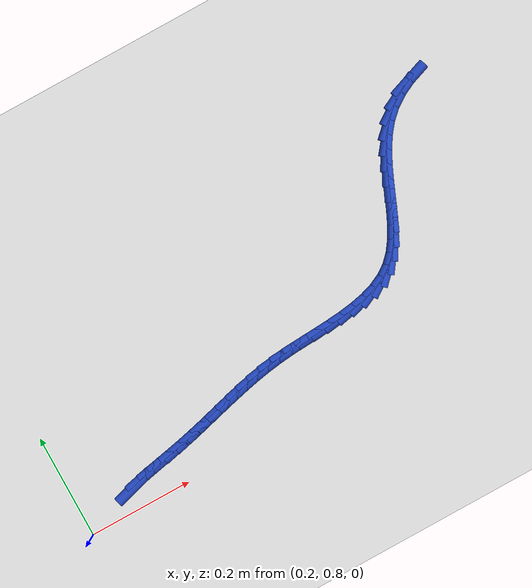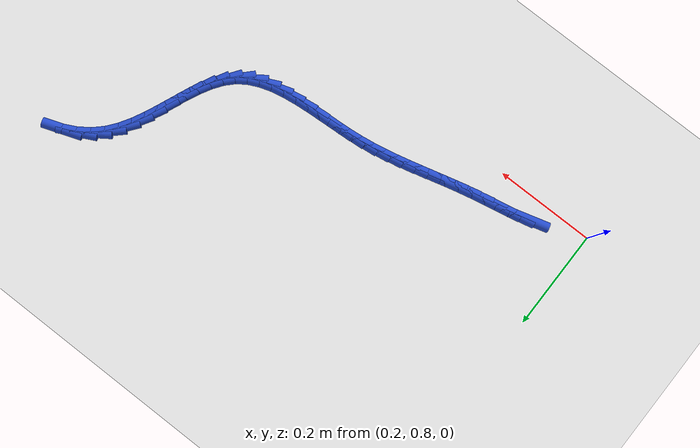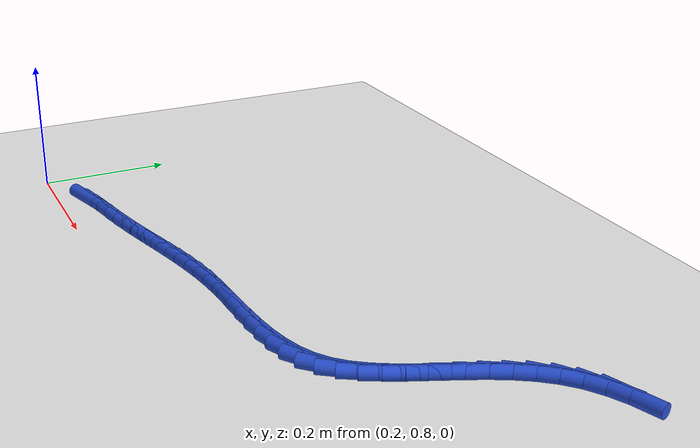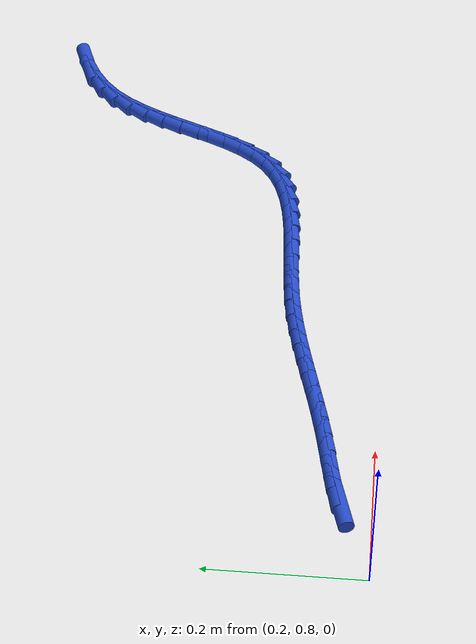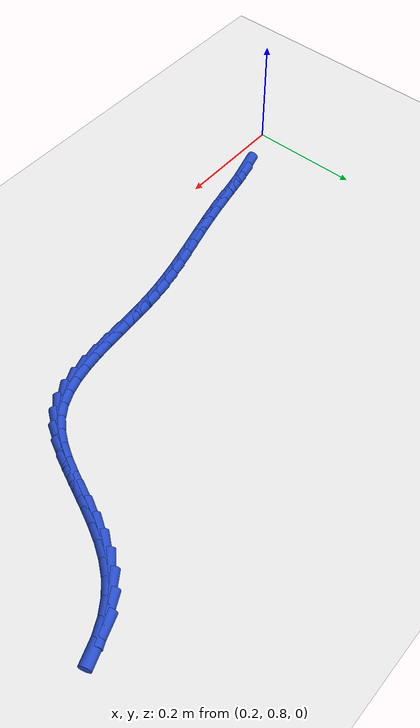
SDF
<sdf version="1.6">
 <world name="default">
  <model name="ground_plane">
   <static>1</static>
   <link name="link">
    <collision name="collision">
     <geometry><plane><normal>0 0 1</normal><size>100 100</size></plane></geometry>
     <surface><friction><ode><mu>100</mu><mu2>50</mu2></ode></friction></surface>
    </collision>
    <visual name="visual">
     <cast_shadows>0</cast_shadows>
     <geometry><plane><normal>0 0 1</normal><size>100 100</size></plane></geometry>
     <material>
      <script><uri>file://media/materials/scripts/gazebo.material</uri><name>Gazebo/WhiteGlow</name></script>
     </material>
    </visual>
   </link>
  </model>
  <model name="line">
   <link name="link_37">
    <pose>0.3079399075796144 0.8411389296652115 0.01 0 1.57 0.27450635002502277</pose>
    <collision name="collision">
     <geometry><cylinder><radius>0.01</radius><length>0.08</length></cylinder></geometry>
    </collision>
    <visual name="visual">
     <material>
      <script><name>Gazebo/Blue</name><uri>file://media/materials/scripts/gazebo.material</uri></script>
     </material>
     <geometry><cylinder><radius>0.01</radius><length>0.08</length></cylinder></geometry>
    </visual>
   </link>
   <link name="link_38">
    <pose>0.33447456900766415 0.8486115080111091 0.01 0 1.57 0.2157952483238712</pose>
    <collision name="collision">
     <geometry><cylinder><radius>0.01</radius><length>0.08</length></cylinder></geometry>
    </collision>
    <visual name="visual">
     <material>
      <script><name>Gazebo/Blue</name><uri>file://media/materials/scripts/gazebo.material</uri></script>
     </material>
     <geometry><cylinder><radius>0.01</radius><length>0.08</length></cylinder></geometry>
    </visual>
   </link>
   <link name="link_39">
    <pose>0.36275498001162254 0.8548108153330591 0.01 0 1.57 0.19287402628280426</pose>
    <collision name="collision">
     <geometry><cylinder><radius>0.01</radius><length>0.08</length></cylinder></geometry>
    </collision>
    <visual name="visual">
     <material>
      <script><name>Gazebo/Blue</name><uri>file://media/materials/scripts/gazebo.material</uri></script>
     </material>
     <geometry><cylinder><radius>0.01</radius><length>0.08</length></cylinder></geometry>
    </visual>
   </link>
   <link name="link_40">
    <pose>0.39159450397847717 0.8604432268998085 0.01 0 1.57 0.20118924336315208</pose>
    <collision name="collision">
     <geometry><cylinder><radius>0.01</radius><length>0.08</length></cylinder></geometry>
    </collision>
    <visual name="visual">
     <material>
      <script><name>Gazebo/Blue</name><uri>file://media/materials/scripts/gazebo.material</uri></script>
     </material>
     <geometry><cylinder><radius>0.01</radius><length>0.08</length></cylinder></geometry>
    </visual>
   </link>
   <link name="link_41">
    <pose>0.4198286737873333 0.8662015419458791 0.01 0 1.57 0.22434620311010006</pose>
    <collision name="collision">
     <geometry><cylinder><radius>0.01</radius><length>0.08</length></cylinder></geometry>
    </collision>
    <visual name="visual">
     <material>
      <script><name>Gazebo/Blue</name><uri>file://media/materials/scripts/gazebo.material</uri></script>
     </material>
     <geometry><cylinder><radius>0.01</radius><length>0.08</length></cylinder></geometry>
    </visual>
   </link>
   <link name="link_42">
    <pose>0.44693329170229457 0.8723864749869115 0.01 0 1.57 0.24233790065833596</pose>
    <collision name="collision">
     <geometry><cylinder><radius>0.01</radius><length>0.08</length></cylinder></geometry>
    </collision>
    <visual name="visual">
     <material>
      <script><name>Gazebo/Blue</name><uri>file://media/materials/scripts/gazebo.material</uri></script>
     </material>
     <geometry><cylinder><radius>0.01</radius><length>0.08</length></cylinder></geometry>
    </visual>
   </link>
   <link name="link_43">
    <pose>0.47310651112427277 0.8788563910384096 0.01 0 1.57 0.2530862116136959</pose>
    <collision name="collision">
     <geometry><cylinder><radius>0.01</radius><length>0.08</length></cylinder></geometry>
    </collision>
    <visual name="visual">
     <material>
      <script><name>Gazebo/Blue</name><uri>file://media/materials/scripts/gazebo.material</uri></script>
     </material>
     <geometry><cylinder><radius>0.01</radius><length>0.08</length></cylinder></geometry>
    </visual>
   </link>
   <link name="link_44">
    <pose>0.4985851462086352 0.8854459802512066 0.01 0 1.57 0.2558098369335754</pose>
    <collision name="collision">
     <geometry><cylinder><radius>0.01</radius><length>0.08</length></cylinder></geometry>
    </collision>
    <visual name="visual">
     <material>
      <script><name>Gazebo/Blue</name><uri>file://media/materials/scripts/gazebo.material</uri></script>
     </material>
     <geometry><cylinder><radius>0.01</radius><length>0.08</length></cylinder></geometry>
    </visual>
   </link>
   <link name="link_45">
    <pose>0.523606011110749 0.8919899327761356 0.01 0 1.57 0.25002080515490976</pose>
    <collision name="collision">
     <geometry><cylinder><radius>0.01</radius><length>0.08</length></cylinder></geometry>
    </collision>
    <visual name="visual">
     <material>
      <script><name>Gazebo/Blue</name><uri>file://media/materials/scripts/gazebo.material</uri></script>
     </material>
     <geometry><cylinder><radius>0.01</radius><length>0.08</length></cylinder></geometry>
    </visual>
   </link>
   <link name="link_46">
    <pose>0.5484059199859805 0.8983229387640296 0.01 0 1.57 0.23558176893066318</pose>
    <collision name="collision">
     <geometry><cylinder><radius>0.01</radius><length>0.08</length></cylinder></geometry>
    </collision>
    <visual name="visual">
     <material>
      <script><name>Gazebo/Blue</name><uri>file://media/materials/scripts/gazebo.material</uri></script>
     </material>
     <geometry><cylinder><radius>0.01</radius><length>0.08</length></cylinder></geometry>
    </visual>
   </link>
   <link name="link_47">
    <pose>0.5732216869896974 0.9042796883657219 0.01 0 1.57 0.21274704398890315</pose>
    <collision name="collision">
     <geometry><cylinder><radius>0.01</radius><length>0.08</length></cylinder></geometry>
    </collision>
    <visual name="visual">
     <material>
      <script><name>Gazebo/Blue</name><uri>file://media/materials/scripts/gazebo.material</uri></script>
     </material>
     <geometry><cylinder><radius>0.01</radius><length>0.08</length></cylinder></geometry>
    </visual>
   </link>
   <link name="link_48">
    <pose>0.5982901262772666 0.909694871732046 0.01 0 1.57 0.18217846485780043</pose>
    <collision name="collision">
     <geometry><cylinder><radius>0.01</radius><length>0.08</length></cylinder></geometry>
    </collision>
    <visual name="visual">
     <material>
      <script><name>Gazebo/Blue</name><uri>file://media/materials/scripts/gazebo.material</uri></script>
     </material>
     <geometry><cylinder><radius>0.01</radius><length>0.08</length></cylinder></geometry>
    </visual>
   </link>
   <link name="link_49">
    <pose>0.623848052004055 0.9144031790138349 0.01 0 1.57 0.14492444308787372</pose>
    <collision name="collision">
     <geometry><cylinder><radius>0.01</radius><length>0.08</length></cylinder></geometry>
    </collision>
    <visual name="visual">
     <material>
      <script><name>Gazebo/Blue</name><uri>file://media/materials/scripts/gazebo.material</uri></script>
     </material>
     <geometry><cylinder><radius>0.01</radius><length>0.08</length></cylinder></geometry>
    </visual>
   </link>
   <link name="link_50">
    <pose>0.6501322783254295 0.9182393003619215 0.01 0 1.57 0.10310828392380683</pose>
    <collision name="collision">
     <geometry><cylinder><radius>0.01</radius><length>0.08</length></cylinder></geometry>
    </collision>
    <visual name="visual">
     <material>
      <script><name>Gazebo/Blue</name><uri>file://media/materials/scripts/gazebo.material</uri></script>
     </material>
     <geometry><cylinder><radius>0.01</radius><length>0.08</length></cylinder></geometry>
    </visual>
   </link>
   <link name="link_51">
    <pose>0.677360974737244 0.921056796171042 0.01 0 1.57 0.07105435621257762</pose>
    <collision name="collision">
     <geometry><cylinder><radius>0.01</radius><length>0.08</length></cylinder></geometry>
    </collision>
    <visual name="visual">
     <material>
      <script><name>Gazebo/Blue</name><uri>file://media/materials/scripts/gazebo.material</uri></script>
     </material>
     <geometry><cylinder><radius>0.01</radius><length>0.08</length></cylinder></geometry>
    </visual>
   </link>
   <link name="link_52">
    <pose>0.7054123233320791 0.9230533277951959 0.01 0 1.57 0.05875239474969498</pose>
    <collision name="collision">
     <geometry><cylinder><radius>0.01</radius><length>0.08</length></cylinder></geometry>
    </collision>
    <visual name="visual">
     <material>
      <script><name>Gazebo/Blue</name><uri>file://media/materials/scripts/gazebo.material</uri></script>
     </material>
     <geometry><cylinder><radius>0.01</radius><length>0.08</length></cylinder></geometry>
    </visual>
   </link>
   <link name="link_53">
    <pose>0.733867586351295 0.9247270689151497 0.01 0 1.57 0.06530260756865779</pose>
    <collision name="collision">
     <geometry><cylinder><radius>0.01</radius><length>0.08</length></cylinder></geometry>
    </collision>
    <visual name="visual">
     <material>
      <script><name>Gazebo/Blue</name><uri>file://media/materials/scripts/gazebo.material</uri></script>
     </material>
     <geometry><cylinder><radius>0.01</radius><length>0.08</length></cylinder></geometry>
    </visual>
   </link>
   <link name="link_54">
    <pose>0.7622980444536112 0.926586295562899 0.01 0 1.57 0.09100128806174924</pose>
    <collision name="collision">
     <geometry><cylinder><radius>0.01</radius><length>0.08</length></cylinder></geometry>
    </collision>
    <visual name="visual">
     <material>
      <script><name>Gazebo/Blue</name><uri>file://media/materials/scripts/gazebo.material</uri></script>
     </material>
     <geometry><cylinder><radius>0.01</radius><length>0.08</length></cylinder></geometry>
    </visual>
   </link>
   <link name="link_55">
    <pose>0.790274978297749 0.9291392837704403 0.01 0 1.57 0.13771178994860755</pose>
    <collision name="collision">
     <geometry><cylinder><radius>0.01</radius><length>0.08</length></cylinder></geometry>
    </collision>
    <visual name="visual">
     <material>
      <script><name>Gazebo/Blue</name><uri>file://media/materials/scripts/gazebo.material</uri></script>
     </material>
     <geometry><cylinder><radius>0.01</radius><length>0.08</length></cylinder></geometry>
    </visual>
   </link>
   <link name="link_56">
    <pose>0.8173696685424287 0.9328943095697688 0.01 0 1.57 0.20887685441671777</pose>
    <collision name="collision">
     <geometry><cylinder><radius>0.01</radius><length>0.08</length></cylinder></geometry>
    </collision>
    <visual name="visual">
     <material>
      <script><name>Gazebo/Blue</name><uri>file://media/materials/scripts/gazebo.material</uri></script>
     </material>
     <geometry><cylinder><radius>0.01</radius><length>0.08</length></cylinder></geometry>
    </visual>
   </link>
   <link name="link_57">
    <pose>0.8431533958463701 0.9383596489928803 0.01 0 1.57 0.30931938928117136</pose>
    <collision name="collision">
     <geometry><cylinder><radius>0.01</radius><length>0.08</length></cylinder></geometry>
    </collision>
    <visual name="visual">
     <material>
      <script><name>Gazebo/Blue</name><uri>file://media/materials/scripts/gazebo.material</uri></script>
     </material>
     <geometry><cylinder><radius>0.01</radius><length>0.08</length></cylinder></geometry>
    </visual>
   </link>
   <link name="link_58">
    <pose>0.867197440868294 0.9460435780717705 0.01 0 1.57 0.4441889619875084</pose>
    <collision name="collision">
     <geometry><cylinder><radius>0.01</radius><length>0.08</length></cylinder></geometry>
    </collision>
    <visual name="visual">
     <material>
      <script><name>Gazebo/Blue</name><uri>file://media/materials/scripts/gazebo.material</uri></script>
     </material>
     <geometry><cylinder><radius>0.01</radius><length>0.08</length></cylinder></geometry>
    </visual>
   </link>
   <link name="link_59">
    <pose>0.8890730842669203 0.9564543728384354 0.01 0 1.57 0.6159463296051844</pose>
    <collision name="collision">
     <geometry><cylinder><radius>0.01</radius><length>0.08</length></cylinder></geometry>
    </collision>
    <visual name="visual">
     <material>
      <script><name>Gazebo/Blue</name><uri>file://media/materials/scripts/gazebo.material</uri></script>
     </material>
     <geometry><cylinder><radius>0.01</radius><length>0.08</length></cylinder></geometry>
    </visual>
   </link>
   <link name="link_60">
    <pose>0.9083518604116103 0.9701000244588895 0.01 0 1.57 0.8044559085383504</pose>
    <collision name="collision">
     <geometry><cylinder><radius>0.01</radius><length>0.08</length></cylinder></geometry>
    </collision>
    <visual name="visual">
     <material>
      <script><name>Gazebo/Blue</name><uri>file://media/materials/scripts/gazebo.material</uri></script>
     </material>
     <geometry><cylinder><radius>0.01</radius><length>0.08</length></cylinder></geometry>
    </visual>
   </link>
   <link name="link_61">
    <pose>0.9248381963469678 0.9872270325025454 0.01 0 1.57 0.9572533420258721</pose>
    <collision name="collision">
     <geometry><cylinder><radius>0.01</radius><length>0.08</length></cylinder></geometry>
    </collision>
    <visual name="visual">
     <material>
      <script><name>Gazebo/Blue</name><uri>file://media/materials/scripts/gazebo.material</uri></script>
     </material>
     <geometry><cylinder><radius>0.01</radius><length>0.08</length></cylinder></geometry>
    </visual>
   </link>
   <link name="link_62">
    <pose>0.9389998368593798 1.0073371242304006 0.01 0 1.57 1.0656575729727458</pose>
    <collision name="collision">
     <geometry><cylinder><radius>0.01</radius><length>0.08</length></cylinder></geometry>
    </collision>
    <visual name="visual">
     <material>
      <script><name>Gazebo/Blue</name><uri>file://media/materials/scripts/gazebo.material</uri></script>
     </material>
     <geometry><cylinder><radius>0.01</radius><length>0.08</length></cylinder></geometry>
    </visual>
   </link>
   <link name="link_63">
    <pose>0.9514218378261524 1.0298003101612632 0.01 0 1.57 1.1348320544643955</pose>
    <collision name="collision">
     <geometry><cylinder><radius>0.01</radius><length>0.08</length></cylinder></geometry>
    </collision>
    <visual name="visual">
     <material>
      <script><name>Gazebo/Blue</name><uri>file://media/materials/scripts/gazebo.material</uri></script>
     </material>
     <geometry><cylinder><radius>0.01</radius><length>0.08</length></cylinder></geometry>
    </visual>
   </link>
   <link name="link_64">
    <pose>0.9626892551245904 1.0539866008139387 0.01 0 1.57 1.1704631951919957</pose>
    <collision name="collision">
     <geometry><cylinder><radius>0.01</radius><length>0.08</length></cylinder></geometry>
    </collision>
    <visual name="visual">
     <material>
      <script><name>Gazebo/Blue</name><uri>file://media/materials/scripts/gazebo.material</uri></script>
     </material>
     <geometry><cylinder><radius>0.01</radius><length>0.08</length></cylinder></geometry>
    </visual>
   </link>
   <link name="link_65">
    <pose>0.9733871446319992 1.0792660067072357 0.01 0 1.57 1.1764235700115273</pose>
    <collision name="collision">
     <geometry><cylinder><radius>0.01</radius><length>0.08</length></cylinder></geometry>
    </collision>
    <visual name="visual">
     <material>
      <script><name>Gazebo/Blue</name><uri>file://media/materials/scripts/gazebo.material</uri></script>
     </material>
     <geometry><cylinder><radius>0.01</radius><length>0.08</length></cylinder></geometry>
    </visual>
   </link>
   <link name="link_66">
    <pose>0.984100562225684 1.10500853835996 0.01 0 1.57 1.154302546132972</pose>
    <collision name="collision">
     <geometry><cylinder><radius>0.01</radius><length>0.08</length></cylinder></geometry>
    </collision>
    <visual name="visual">
     <material>
      <script><name>Gazebo/Blue</name><uri>file://media/materials/scripts/gazebo.material</uri></script>
     </material>
     <geometry><cylinder><radius>0.01</radius><length>0.08</length></cylinder></geometry>
    </visual>
   </link>
   <link name="link_67">
    <pose>0.9954145637829506 1.1305842062909193 0.01 0 1.57 1.103596077825522</pose>
    <collision name="collision">
     <geometry><cylinder><radius>0.01</radius><length>0.08</length></cylinder></geometry>
    </collision>
    <visual name="visual">
     <material>
      <script><name>Gazebo/Blue</name><uri>file://media/materials/scripts/gazebo.material</uri></script>
     </material>
     <geometry><cylinder><radius>0.01</radius><length>0.08</length></cylinder></geometry>
    </visual>
   </link>
   <link name="link_68">
    <pose>1.0079142051811034 1.1553630210189199 0.01 0 1.57 1.0222566667633124</pose>
    <collision name="collision">
     <geometry><cylinder><radius>0.01</radius><length>0.08</length></cylinder></geometry>
    </collision>
    <visual name="visual">
     <material>
      <script><name>Gazebo/Blue</name><uri>file://media/materials/scripts/gazebo.material</uri></script>
     </material>
     <geometry><cylinder><radius>0.01</radius><length>0.08</length></cylinder></geometry>
    </visual>
   </link>
   <link name="link_69">
    <pose>1.0221845422974485 1.1787149930627696 0.01 0 1.57 0.9079065773738728</pose>
    <collision name="collision">
     <geometry><cylinder><radius>0.01</radius><length>0.08</length></cylinder></geometry>
    </collision>
    <visual name="visual">
     <material>
      <script><name>Gazebo/Blue</name><uri>file://media/materials/scripts/gazebo.material</uri></script>
     </material>
     <geometry><cylinder><radius>0.01</radius><length>0.08</length></cylinder></geometry>
    </visual>
   </link>
   <link name="link_70">
    <pose>1.0388106310092906 1.2000101329412747 0.01 0 1.57 0.7610379380244364</pose>
    <collision name="collision">
     <geometry><cylinder><radius>0.01</radius><length>0.08</length></cylinder></geometry>
    </collision>
    <visual name="visual">
     <material>
      <script><name>Gazebo/Blue</name><uri>file://media/materials/scripts/gazebo.material</uri></script>
     </material>
     <geometry><cylinder><radius>0.01</radius><length>0.08</length></cylinder></geometry>
    </visual>
   </link>
   <link name="link_71">
    <pose>1.0583589213258864 1.2186284911439786 0.01 0 1.57 0.6060542507324087</pose>
    <collision name="collision">
     <geometry><cylinder><radius>0.01</radius><length>0.08</length></cylinder></geometry>
    </collision>
    <visual name="visual">
     <material>
      <script><name>Gazebo/Blue</name><uri>file://media/materials/scripts/gazebo.material</uri></script>
     </material>
     <geometry><cylinder><radius>0.01</radius><length>0.08</length></cylinder></geometry>
    </visual>
   </link>
   <link name="link_72">
    <pose>1.0808731000513179 1.234232208050986 0.01 0 1.57 0.4666572311444285</pose>
    <collision name="collision">
     <geometry><cylinder><radius>0.01</radius><length>0.08</length></cylinder></geometry>
    </collision>
    <visual name="visual">
     <material>
      <script><name>Gazebo/Blue</name><uri>file://media/materials/scripts/gazebo.material</uri></script>
     </material>
     <geometry><cylinder><radius>0.01</radius><length>0.08</length></cylinder></geometry>
    </visual>
   </link>
   <link name="link_73">
    <pose>1.1058152571030393 1.2467972613600926 0.01 0 1.57 0.34125926283778646</pose>
    <collision name="collision">
     <geometry><cylinder><radius>0.01</radius><length>0.08</length></cylinder></geometry>
    </collision>
    <visual name="visual">
     <material>
      <script><name>Gazebo/Blue</name><uri>file://media/materials/scripts/gazebo.material</uri></script>
     </material>
     <geometry><cylinder><radius>0.01</radius><length>0.08</length></cylinder></geometry>
    </visual>
   </link>
  </model>
 </world>
</sdf>
